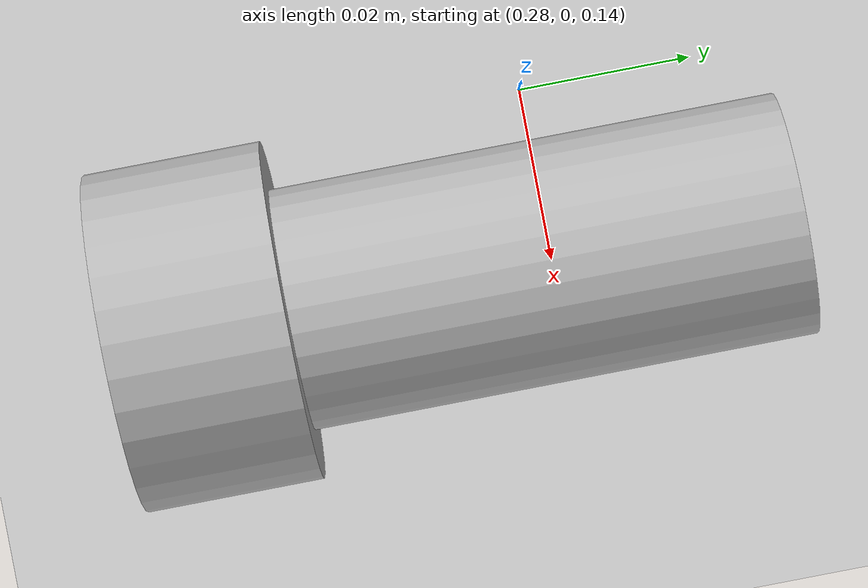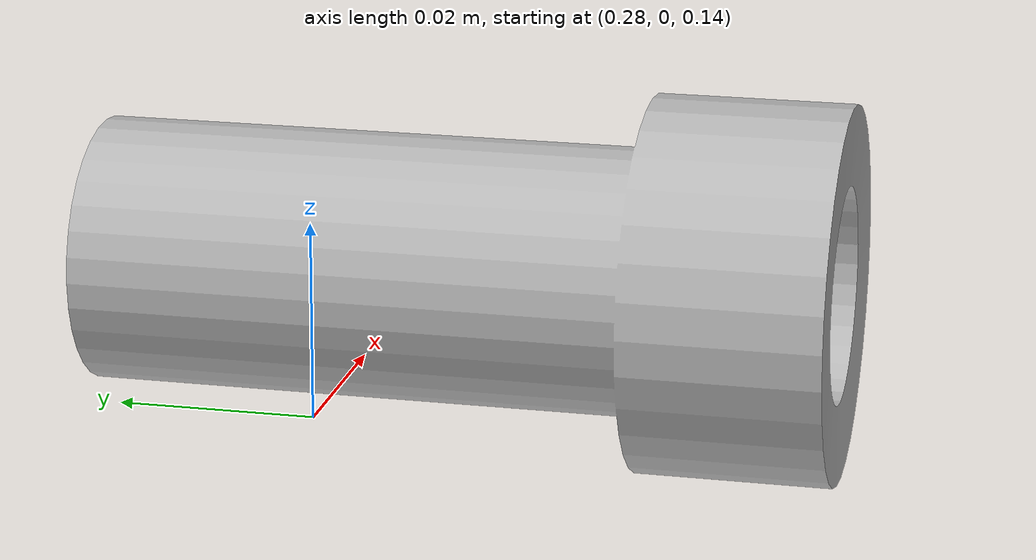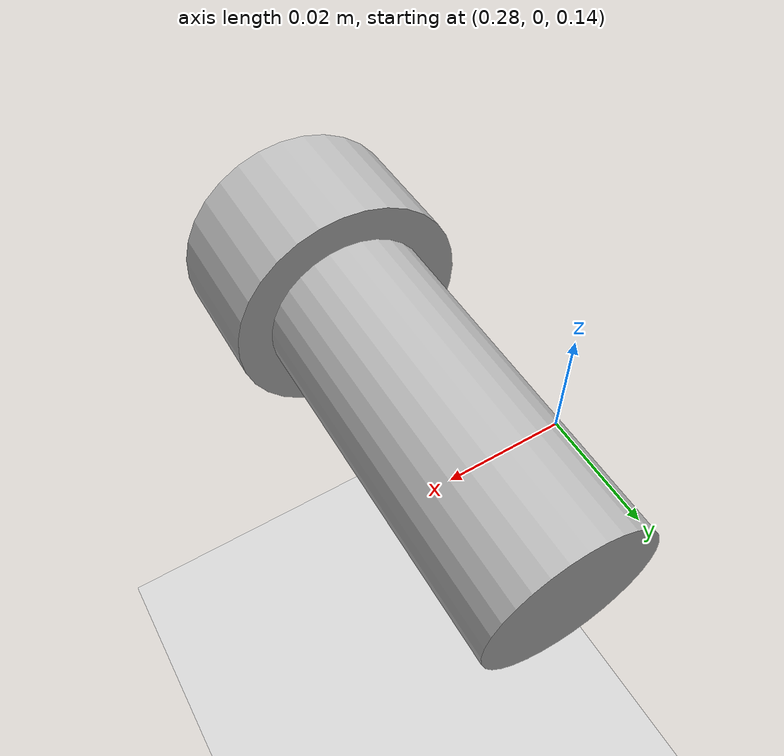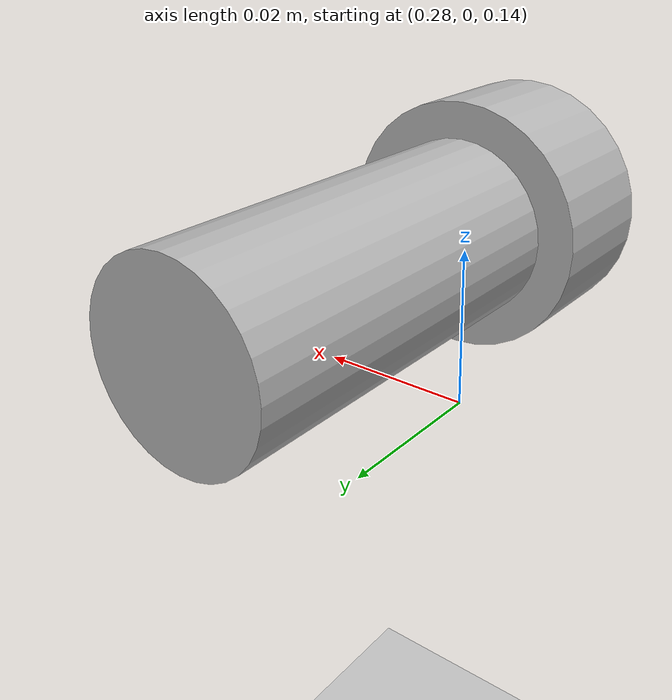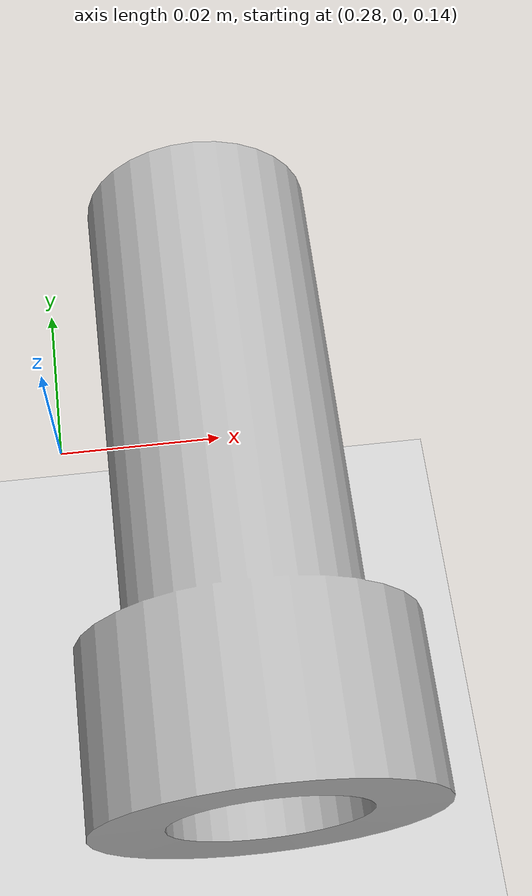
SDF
<?xml version='1.0' ?>
<sdf version='1.4'>
  <world name='empty'>
    <!-- A global light source -->
    <include>
      <uri>model://sun</uri>
    </include>

    <!-- A ground plane -->
    <include>
      <uri>model://ground_plane</uri>
    </include>

    <!-- Physics settings for simulation -->
    <physics type='ode'>
      <max_step_size>0.001</max_step_size>
      <real_time_factor>1</real_time_factor>
      <real_time_update_rate>1000</real_time_update_rate>
      <gravity>0 0 -9.81</gravity>
    </physics>

    <model name='standpipe_model'>
      <pose frame=''>0.3 -0.05 0.15 -1.5707963265 0 0</pose>
      <link name='standpipe'>
        <inertial>
          <mass>1.0</mass>
          <inertia>
            <ixx>1.0</ixx>
            <ixy>0</ixy>
            <ixz>0</ixz>
            <iyy>1.0</iyy>
            <iyz>0</iyz>
            <izz>1.0</izz>
          </inertia>
        </inertial>
        <collision name='collision'>
            <geometry>
                <mesh>
                    <uri>model://standpipe/meshes/standpipe.dae</uri>
                    <scale>0.2 0.2 0.2</scale>
                </mesh>
            </geometry>
          <max_contacts>10</max_contacts>
          <surface>
            <friction>
                <ode>
                <mu>100.0</mu>
                <mu2>100.0</mu2>
                </ode>
            </friction>
            <contact>
                <ode>
                <kp>10000000.0</kp>
                <kd>1.0</kd>
                <min_depth>0.001</min_depth>
                <max_vel>0.1</max_vel>
                </ode>
            </contact>
           </surface>
        </collision>
        <visual name='visual'>
            <geometry>
                <mesh>
                    <uri>model://standpipe/meshes/standpipe.dae</uri>
                    <scale>0.2 0.2 0.2</scale>
                </mesh>
            </geometry>
        </visual>
        <self_collide>0</self_collide>
        <kinematic>0</kinematic>
      </link>
    </model>

  </world>
</sdf>
